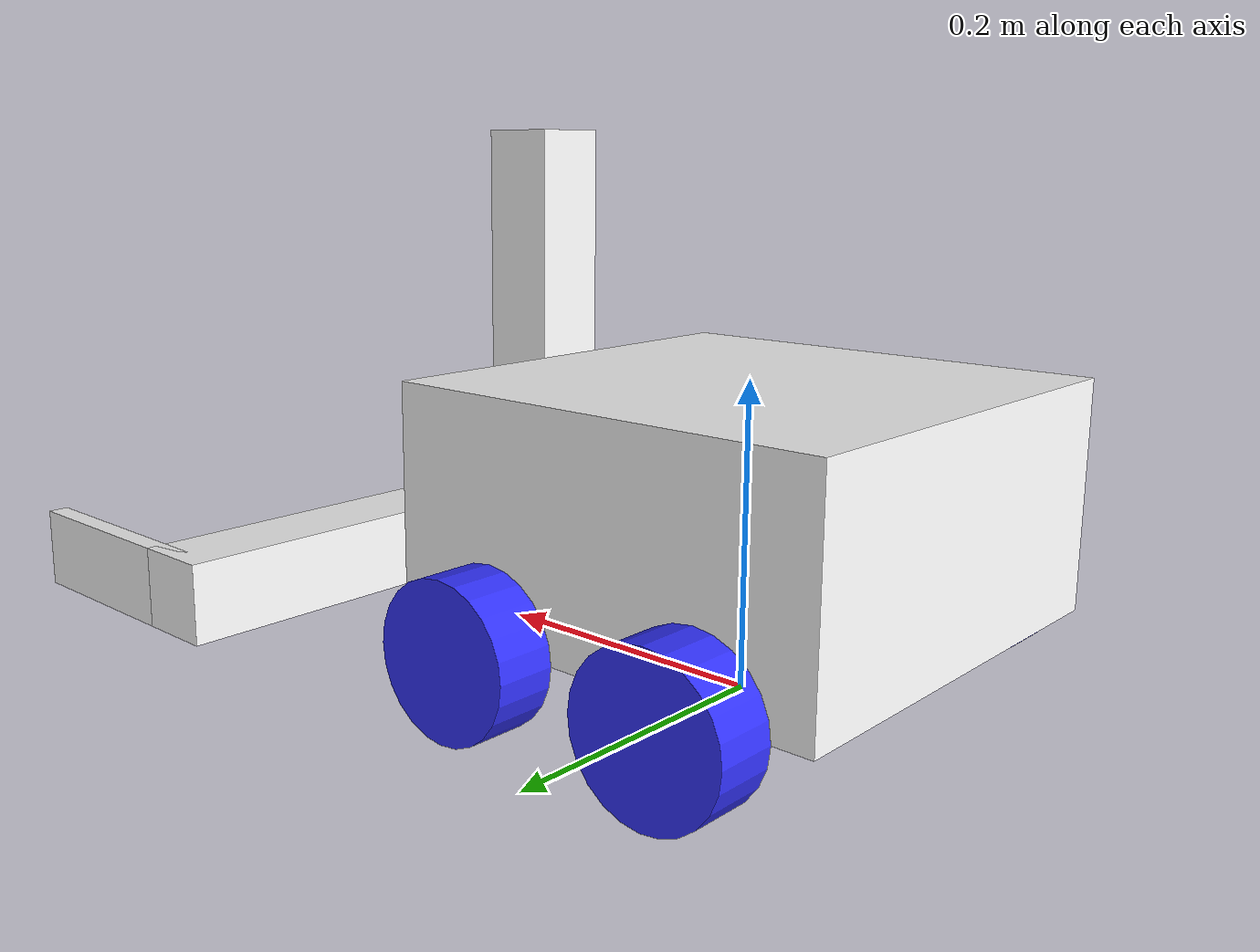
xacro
<?xml version="1.0"?>
<robot xmlns:xacro="http://www.ros.org/wiki/xacro" name="robot">

<xacro:include filename="inertial_macros.xacro" />

<material name="blue">
    <color rgba="0.2 0.2 1 1"/>
</material>
<material name="white">
    <color rgba="1 1 1 1"/>
</material>

<link name="base_link">
</link>

<joint name="base_footprint_joint" type="fixed">
    <parent link="base_link"/>
    <child link="base_footprint"/>
    <origin xyz="0 0 0" rpy="0 0 0"/>
</joint>

<link name="base_footprint">
</link>

<joint name="chassis_joint" type="fixed">
    <parent link="base_link"/>
    <child link="chassis"/>
    <origin xyz="0 0 0.05" rpy="0 0 0"/>
</joint>

<link name="chassis">
    <visual>
        <origin xyz="0 0 0.075" rpy="0 0 0"/>
        <geometry>
            <box size="0.3 0.3 0.15"/>
        </geometry>
        <material name="white"/>
    </visual>
    <collision>
        <origin xyz="0 0 0.075" rpy="0 0 0"/>
        <geometry>
            <box size="0.3 0.3 0.15"/>
        </geometry>
    </collision>
    <xacro:inertial_box mass="20" x="0.3" y="0.3" z="0.15">
        <origin xyz="0 0 0.075" rpy="0 0 0"/>
    </xacro:inertial_box>
</link>

<gazebo reference="chassis">
    <material>Gazebo/White</material>
</gazebo>

<!-- front_left_wheel_joint -->

<joint name="front_left_wheel_joint" type="continuous">
    <parent link="base_link"/>
    <child link="front_left_wheel"/>
    <origin xyz="0.075 0.17 0.05" rpy="-${pi/2} 0 0"/>
    <axis xyz="0 0 1"/>
</joint>

<link name="front_left_wheel">
    <visual>
        <geometry>
            <cylinder length="0.04" radius="0.05" />
        </geometry>
        <material name="blue"/>
    </visual>
    <collision>
        <geometry>
            <cylinder length="0.04" radius="0.05" />
        </geometry>
    </collision>
    <xacro:inertial_cylinder mass="2" length="0.04" radius="0.05">
        <origin xyz="0 0 0" rpy="0 0 0"/>
    </xacro:inertial_cylinder>
</link>

<!-- back_left_wheel_joint -->

<joint name="back_left_wheel_joint" type="continuous">
    <parent link="base_link"/>
    <child link="back_left_wheel"/>
    <origin xyz="-0.075 0.17 0.05" rpy="-${pi/2} 0 0"/>
    <axis xyz="0 0 1"/>
</joint>

<link name="back_left_wheel">
    <visual>
        <geometry>
            <cylinder length="0.04" radius="0.05" />
        </geometry>
        <material name="blue"/>
    </visual>
    <collision>
        <geometry>
            <cylinder length="0.04" radius="0.05" />
        </geometry>
    </collision>
    <xacro:inertial_cylinder mass="2" length="0.04" radius="0.05">
        <origin xyz="0 0 0" rpy="0 0 0"/>
    </xacro:inertial_cylinder>
</link>

<!-- front_right_wheel_joint -->

<joint name="front_right_wheel_joint" type="continuous">
    <parent link="base_link"/>
    <child link="front_right_wheel"/>
    <origin xyz="0.075 -0.17 0.05" rpy="${pi/2} 0 0"/>
    <axis xyz="0 0 -1"/>
</joint>

<link name="front_right_wheel">
    <visual>
        <geometry>
            <cylinder length="0.04" radius="0.05" />
        </geometry>
        <material name="blue"/>
    </visual>
    <collision>
        <geometry>
            <cylinder length="0.04" radius="0.05" />
        </geometry>
    </collision>
    <xacro:inertial_cylinder mass="2" length="0.04" radius="0.05">
        <origin xyz="0 0 0" rpy="0 0 0"/>
    </xacro:inertial_cylinder>
</link>

<!-- back_right_wheel_joint -->

<joint name="back_right_wheel_joint" type="continuous">
    <parent link="base_link"/>
    <child link="back_right_wheel"/>
    <origin xyz="-0.075 -0.17 0.05" rpy="${pi/2} 0 0"/>
    <axis xyz="0 0 -1"/>
</joint>

<link name="back_right_wheel">
    <visual>
        <geometry>
            <cylinder length="0.04" radius="0.05" />
        </geometry>
        <material name="blue"/>
    </visual>
    <collision>
        <geometry>
            <cylinder length="0.04" radius="0.05" />
        </geometry>
    </collision>
    <xacro:inertial_cylinder mass="2" length="0.04" radius="0.05">
        <origin xyz="0 0 0" rpy="0 0 0"/>
    </xacro:inertial_cylinder>
</link>

<gazebo reference="front_left_wheel">
    <mu1>0.2</mu1>
    <mu2>0.2</mu2>
    </gazebo>

<gazebo reference="front_right_wheel">
    <mu1>0.2</mu1>
    <mu2>0.2</mu2>
</gazebo>

<gazebo reference="back_left_wheel">
    <mu1>0.2</mu1>
    <mu2>0.2</mu2>
</gazebo>

<gazebo reference="back_right_wheel">
    <mu1>0.2</mu1>
    <mu2>0.2</mu2>
</gazebo>

<!-- ARM BASE -->
<joint name="arm_base1_joint" type="fixed">
    <parent link="chassis"/>
    <child link="arm_base1"/>
    <origin xyz="0.175 0 0" rpy="0 0 0"/>
</joint>

<link name="arm_base1">
    <visual>
        <origin xyz="0 0 0.15" rpy="0 0 0"/>
        <geometry>
            <box size="0.05 0.05 0.3"/>
        </geometry>
        <material name="white"/>
    </visual>
    <collision>
        <origin xyz="0 0 0.15" rpy="0 0 0"/>
        <geometry>
            <box size="0.05 0.05 0.3"/>
        </geometry>
    </collision>
    <xacro:inertial_box mass="0.5" x="0.05" y="0.05" z="0.3">
        <origin xyz="0 0 0.15" rpy="0 0 0"/>
    </xacro:inertial_box>
</link>

<joint name="arm_base2_joint" type="prismatic">
    <parent link="arm_base1"/>
    <child link="arm_base2"/>
    <origin xyz="0.05 0 0.025" rpy="0 0 0"/>
    <axis xyz="0 0 1"/>
    <limit lower="0" upper="0.2" effort="1000" velocity="1.0"/>
</joint>

<link name="arm_base2">
    <visual>
        <origin xyz="0 0 0" rpy="0 0 0"/>
        <geometry>
            <box size="0.05 0.54 0.05"/>
        </geometry>
        <material name="white"/>
    </visual>
    <collision>
        <origin xyz="0 0 0" rpy="0 0 0"/>
        <geometry>
            <box size="0.05 0.54 0.05"/>
        </geometry>
    </collision>
    <xacro:inertial_box mass="0.2" x="0.05" y="0.54" z="0.05">
        <origin xyz="0 0 0" rpy="0 0 0"/>
    </xacro:inertial_box>
</link>

<!-- ARM L -->

<joint name="arm_slide_joint_L" type="prismatic">
    <parent link="arm_base2"/>
    <child link="arm_link_L"/>
    <origin xyz="0 -0.26375 0" rpy="0 0 0"/>
    <axis xyz="0 1 0"/>
    <limit lower="0" upper="0.26375" effort="1000" velocity="1.0"/>
</joint>

<link name="arm_link_L">
    <visual>
        <origin xyz="0.075 0 0" rpy="0 0 0"/>
        <geometry>
            <box size="0.15 0.0125 0.05"/>
        </geometry>
        <material name="white"/>
    </visual>
    <collision>
        <origin xyz="0.075 0 0" rpy="0 0 0"/>
        <geometry>
            <box size="0.15 0.0125 0.05"/>
        </geometry>
    </collision>
    <xacro:inertial_box mass="0.1" x="0.15" y="0.0125" z="0.05">
        <origin xyz="0.075 0 0" rpy="0 0 0"/>
    </xacro:inertial_box>

</link>

 <gazebo reference="arm_link_L">
        <mu1>100.0</mu1>
        <mu2>100.0</mu2>
        <kp>1000000.0</kp>
        <kd>1.0</kd>
        <material>Gazebo/White</material>
</gazebo>

<!-- ARM R -->

<joint name="arm_slide_joint_R" type="prismatic">
    <parent link="arm_base2"/>
    <child link="arm_link_R"/>
    <origin xyz="0 0.26375 0" rpy="0 0 0"/>
    <axis xyz="0 1 0"/>
    <limit lower="-0.26375" upper="0" effort="1000" velocity="1.0"/>
</joint>

<link name="arm_link_R">
    <visual>
        <origin xyz="0.075 0 0" rpy="0 0 0"/>
        <geometry>
            <box size="0.15 0.0125 0.05"/>
        </geometry>
        <material name="white"/>
    </visual>
    <collision>
        <origin xyz="0.075 0 0" rpy="0 0 0"/>
        <geometry>
            <box size="0.15 0.0125 0.05"/>
        </geometry>
    </collision>
    <xacro:inertial_box mass="0.1" x="0.15" y="0.0125" z="0.05">
        <origin xyz="0.075 0 0" rpy="0 0 0"/>
    </xacro:inertial_box>

</link>

<gazebo reference="arm_link_R">
        <mu1>100.0</mu1>
        <mu2>100.0</mu2>
        <kp>1000000.0</kp>
        <kd>1.0</kd>
        <material>Gazebo/White</material>
</gazebo>

</robot>

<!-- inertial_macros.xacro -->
<robot xmlns:xacro="http://www.ros.org/wiki/xacro" >

      <!-- Specify some standard inertial calculations https://en.wikipedia.org/wiki/List_of_moments_of_inertia -->
      <!-- These make use of xacro's mathematical functionality -->
    <xacro:macro name="inertial_sphere" params="mass radius *origin">
        <inertial>
            <xacro:insert_block name="origin"/>
            <mass value="${mass}" />
            <inertia ixx="${(2/5) * mass * (radius*radius)}" ixy="0.0" ixz="0.0"
                    iyy="${(2/5) * mass * (radius*radius)}" iyz="0.0"
                    izz="${(2/5) * mass * (radius*radius)}" />
        </inertial>
    </xacro:macro>
    <xacro:macro name="inertial_box" params="mass x y z *origin">
        <inertial>
            <xacro:insert_block name="origin"/>
            <mass value="${mass}" />
            <inertia ixx="${(1/12) * mass * (y*y+z*z)}" ixy="0.0" ixz="0.0"
                    iyy="${(1/12) * mass * (x*x+z*z)}" iyz="0.0"
                    izz="${(1/12) * mass * (x*x+y*y)}" />
        </inertial>
    </xacro:macro>
      <xacro:macro name="inertial_cylinder" params="mass length radius *origin">
        <inertial>
            <xacro:insert_block name="origin"/>
            <mass value="${mass}" />
            <inertia ixx="${(1/12) * mass * (3*radius*radius + length*length)}" ixy="0.0" ixz="0.0"
                    iyy="${(1/12) * mass * (3*radius*radius + length*length)}" iyz="0.0"
                    izz="${(1/2) * mass * (radius*radius)}" />
        </inertial>
      </xacro:macro>
    </robot>
